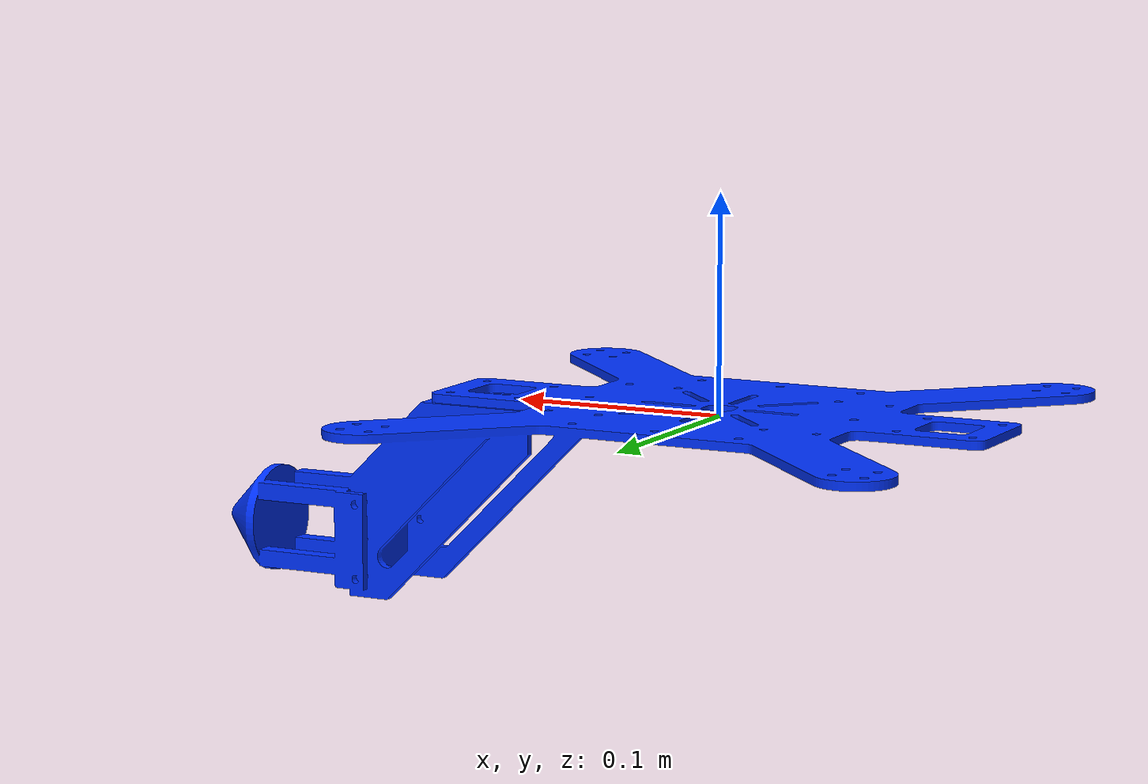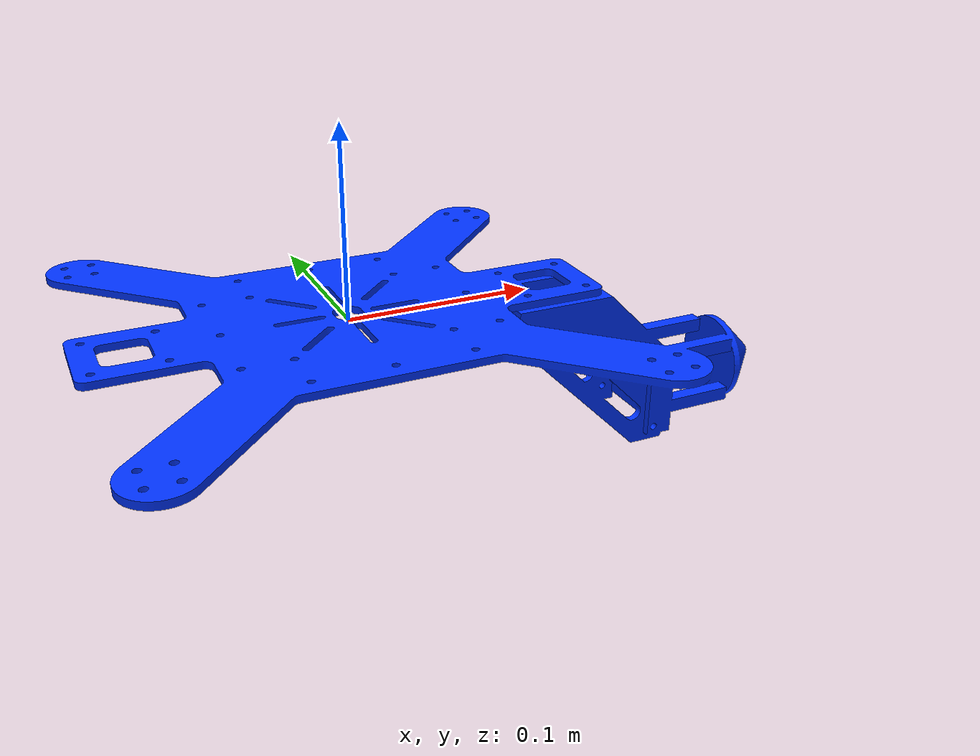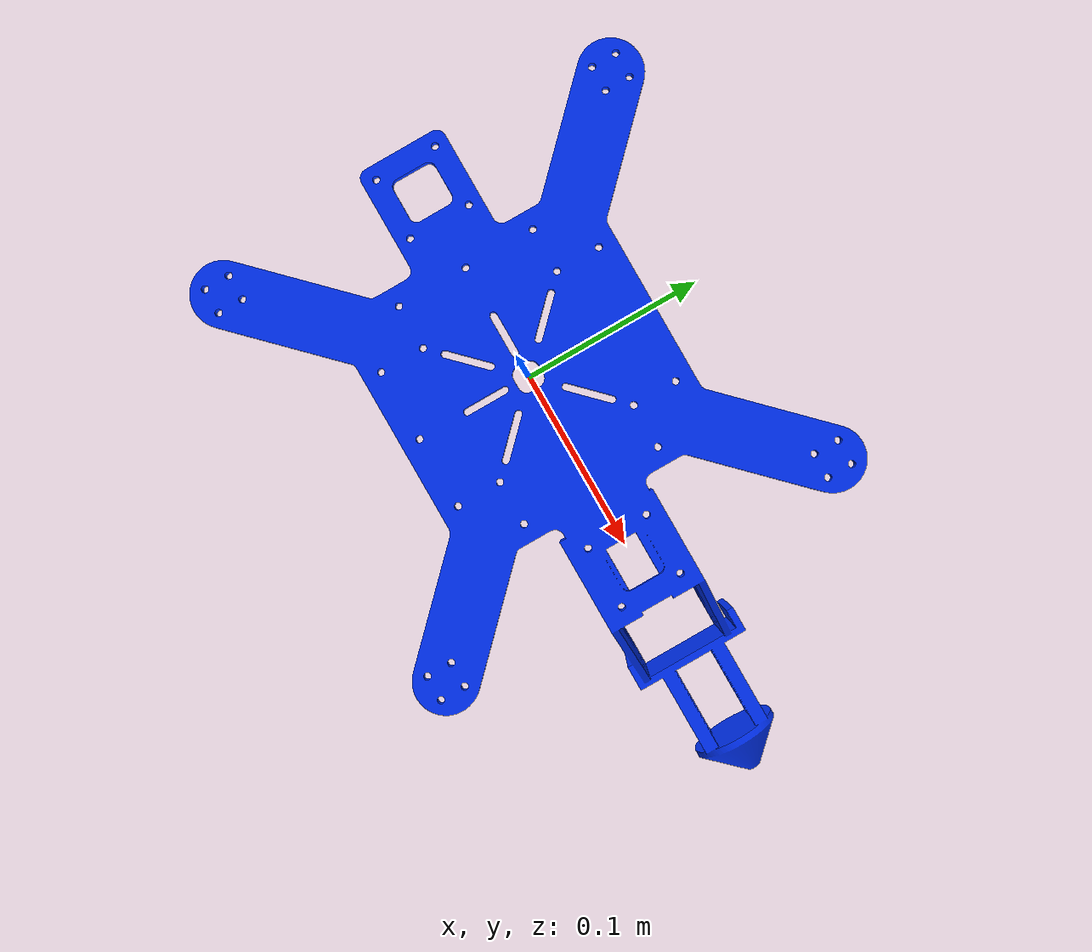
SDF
<?xml version="1.0"?>
<sdf version="1.9">
  <model name="male_drone">
    <static>false</static>
    <link name="base_link">

      <visual name="visual">
        <geometry>
          <mesh>
            <uri>model://male_drone/meshes/MaleDrone.stl</uri>
            <scale>0.001 0.001 0.001</scale>
          </mesh>
        </geometry>
        <material>
          <ambient>0 0.2 1 1</ambient>
          <diffuse>0 0.2 1 1</diffuse>
        </material>
      </visual>

      <collision name="collision">
        <geometry>
          <mesh>
            <uri>model://male_drone/meshes/MaleDrone.stl</uri>
            <scale>0.001 0.001 0.001</scale>
          </mesh>
        </geometry>
      </collision>

    </link>
  </model>
</sdf>
